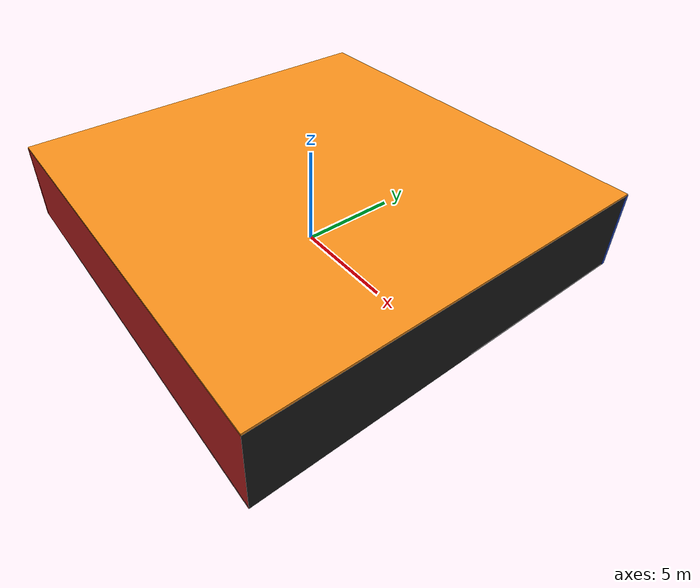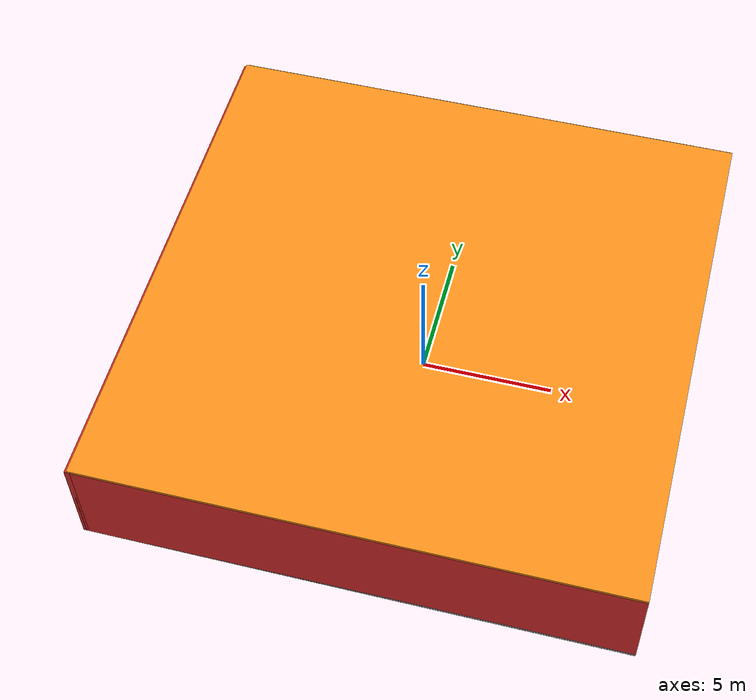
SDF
<sdf version="1.4">
 <world name="default">
  <physics type="ode">
   <max_step_size>0.001</max_step_size>
   <real_time_factor>1</real_time_factor>
   <real_time_update_rate>1000</real_time_update_rate>
   <gravity>0 0 -9.8</gravity>
  </physics>
  <scene><ambient>0.4 0.4 0.4 1</ambient><background>0.7 0.7 0.7 1</background><shadows>1</shadows></scene>
  <model name="Surrounding">
   <static>1</static>
   <link name="Ceiling">
    <collision name="Ceiling_Collision"><geometry><box><size>20 20 0.1</size></box></geometry></collision>
    <visual name="Ceiling_Visual">
     <geometry><box><size>20 20 0.1</size></box></geometry>
     <material>
      <script><uri>file://media/materials/scripts/gazebo.material</uri><name>Gazebo/Orange</name></script>
     </material>
    </visual>
    <pose>0 0 4.05 0 0 0</pose>
   </link>
   <link name="Wall_South">
    <collision name="Wall_South_Collision">
     <geometry><box><size>20 0 4</size></box></geometry>
     <pose>0 0 2 0 -0 0</pose>
    </collision>
    <visual name="Wall_South_Visual">
     <pose>0 0 2 0 -0 0</pose>
     <geometry><box><size>20 0 4</size></box></geometry>
     <material>
      <script><uri>file://media/materials/scripts/gazebo.material</uri><name>Gazebo/RedBright</name></script>
     </material>
    </visual>
    <velocity_decay><linear>0</linear><angular>0</angular></velocity_decay>
    <pose>0 -10 0 0 -0 0</pose>
   </link>
   <link name="Wall_East">
    <collision name="Wall_21_Collision">
     <geometry><box><size>20 0 4</size></box></geometry>
     <pose>0 0 2 0 -0 0</pose>
    </collision>
    <visual name="Wall_21_Visual">
     <pose>0 0 2 0 -0 0</pose>
     <geometry><box><size>20 0 4</size></box></geometry>
     <material>
      <script><uri>file://media/materials/scripts/gazebo.material</uri><name>Gazebo/Black</name></script>
     </material>
    </visual>
    <velocity_decay><linear>0</linear><angular>0</angular></velocity_decay>
    <pose>10 0 0 0 -0 1.5708</pose>
   </link>
   <link name="Wall_North">
    <collision name="Wall_22_Collision">
     <geometry><box><size>20 0.2 4</size></box></geometry>
     <pose>0 0 2 0 -0 0</pose>
    </collision>
    <visual name="Wall_22_Visual">
     <pose>0 0 2 0 -0 0</pose>
     <geometry><box><size>20 0.2 4</size></box></geometry>
     <material>
      <script><uri>file://media/materials/scripts/gazebo.material</uri><name>Gazebo/BlueGlow</name></script>
     </material>
    </visual>
    <velocity_decay><linear>0</linear><angular>0</angular></velocity_decay>
    <pose>0 10 0 0 -0 0</pose>
   </link>
   <link name="Wall_West">
    <collision name="Wall_23_Collision">
     <geometry><box><size>20 0.2 4</size></box></geometry>
     <pose>0 0 2 0 -0 0</pose>
    </collision>
    <visual name="Wall_23_Visual">
     <pose>0 0 2 0 -0 0</pose>
     <geometry><box><size>20 0.2 4</size></box></geometry>
     <material>
      <script><uri>file://media/materials/scripts/gazebo.material</uri><name>Gazebo/RedGlow</name></script>
     </material>
    </visual>
    <velocity_decay><linear>0</linear><angular>0</angular></velocity_decay>
    <pose>-10 0 0 0 0 -1.5708</pose>
   </link>
   <link name="Ground_link">
    <collision name="collision">
     <pose>0 0 .05 0 -0 0</pose>
     <geometry><box><size>20 20 0.1</size></box></geometry>
    </collision>
    <visual name="visual">
     <pose>0 0 .05 0 -0 0</pose>
     <geometry><box><size>20 20 0.1</size></box></geometry>
     <material>
      <script><uri>file://media/materials/scripts/gazebo.material</uri><name>Gazebo/Grey</name></script>
     </material>
    </visual>
   </link>
   <static>1</static>
  </model>
  <spherical_coordinates>
   <surface_model>EARTH_WGS84</surface_model>
   <latitude_deg>0</latitude_deg>
   <longitude_deg>0</longitude_deg>
   <elevation>0</elevation>
   <heading_deg>0</heading_deg>
  </spherical_coordinates>
  <light name="lightball_0" type="diffuse">
   <diffuse>0.8 0.8 0.8 1</diffuse>
   <specular>0.2 0.2 0.2 1</specular>
   <attenuation>
    <range>100</range>
    <constant>0.7</constant>
    <linear>0.01</linear>
    <quadratic>0.001</quadratic>
   </attenuation>
   <direction>-0.5 0.1 -0.9</direction>
   <pose>4.19653005971 9.36515528289 2.83528018904 0 0 0</pose>
  </light>
  <light name="lightball_1" type="diffuse">
   <diffuse>0.8 0.8 0.8 1</diffuse>
   <specular>0.2 0.2 0.2 1</specular>
   <attenuation>
    <range>100</range>
    <constant>0.7</constant>
    <linear>0.01</linear>
    <quadratic>0.001</quadratic>
   </attenuation>
   <direction>-0.5 0.1 -0.9</direction>
   <pose>6.63555135831 -6.49196283672 3.39907223334 0 0 0</pose>
  </light>
  <light name="lightball_2" type="diffuse">
   <diffuse>0.8 0.8 0.8 1</diffuse>
   <specular>0.2 0.2 0.2 1</specular>
   <attenuation>
    <range>100</range>
    <constant>0.7</constant>
    <linear>0.01</linear>
    <quadratic>0.001</quadratic>
   </attenuation>
   <direction>-0.5 0.1 -0.9</direction>
   <pose>5.84226384154 8.5335457453 1.96128282562 0 0 0</pose>
  </light>
  <light name="lightball_3" type="diffuse">
   <diffuse>0.8 0.8 0.8 1</diffuse>
   <specular>0.2 0.2 0.2 1</specular>
   <attenuation>
    <range>100</range>
    <constant>0.7</constant>
    <linear>0.01</linear>
    <quadratic>0.001</quadratic>
   </attenuation>
   <direction>-0.5 0.1 -0.9</direction>
   <pose>0.339624848654 2.66784922974 2.33979271171 0 0 0</pose>
  </light>
  <light name="lightball_4" type="diffuse">
   <diffuse>0.8 0.8 0.8 1</diffuse>
   <specular>0.2 0.2 0.2 1</specular>
   <attenuation>
    <range>100</range>
    <constant>0.7</constant>
    <linear>0.01</linear>
    <quadratic>0.001</quadratic>
   </attenuation>
   <direction>-0.5 0.1 -0.9</direction>
   <pose>-7.18342024666 -7.2674730788 3.61900630175 0 0 0</pose>
  </light>
  <light name="lightball_5" type="diffuse">
   <diffuse>0.8 0.8 0.8 1</diffuse>
   <specular>0.2 0.2 0.2 1</specular>
   <attenuation>
    <range>100</range>
    <constant>0.7</constant>
    <linear>0.01</linear>
    <quadratic>0.001</quadratic>
   </attenuation>
   <direction>-0.5 0.1 -0.9</direction>
   <pose>-2.56555055647 1.59205999399 2.57981992669 0 0 0</pose>
  </light>
  <light name="lightball_6" type="diffuse">
   <diffuse>0.8 0.8 0.8 1</diffuse>
   <specular>0.2 0.2 0.2 1</specular>
   <attenuation>
    <range>100</range>
    <constant>0.7</constant>
    <linear>0.01</linear>
    <quadratic>0.001</quadratic>
   </attenuation>
   <direction>-0.5 0.1 -0.9</direction>
   <pose>-8.18173205235 -5.59811247263 2.96816159636 0 0 0</pose>
  </light>
  <light name="lightball_7" type="diffuse">
   <diffuse>0.8 0.8 0.8 1</diffuse>
   <specular>0.2 0.2 0.2 1</specular>
   <attenuation>
    <range>100</range>
    <constant>0.7</constant>
    <linear>0.01</linear>
    <quadratic>0.001</quadratic>
   </attenuation>
   <direction>-0.5 0.1 -0.9</direction>
   <pose>-5.43163385012 0.800420540141 2.25779166132 0 0 0</pose>
  </light>
  <include><uri>model://cabinet</uri><pose>-7.44100627985 -4.83735127314 0 0 0 1.75427777328</pose></include>
  <include>
   <uri>model://construction_cone</uri>
   <pose>-7.248690669 1.5206046695 0 0 0 1.57147165709</pose>
  </include>
  <include>
   <uri>model://robocup_3Dsim_goal</uri>
   <pose>-1.32124424983 0.779501892444 0 0 0 1.23121612374</pose>
  </include>
  <include><uri>model://cabinet</uri><pose>-1.84403973143 5.2756346238 0 0 0 1.54499695714</pose></include>
  <include>
   <uri>model://construction_cone</uri>
   <pose>1.21434879575 -7.76432670378 0 0 0 1.52770518232</pose>
  </include>
  <include>
   <uri>model://textured_shapes</uri>
   <pose>1.74129640897 1.82774970693 0 0 0 0.27895647136</pose>
  </include>
  <include>
   <uri>model://construction_cone</uri>
   <pose>2.27600629027 7.69196971851 0 0 0 2.05212402111</pose>
  </include>
  <include>
   <uri>model://construction_cone</uri>
   <pose>4.20201626116 -4.69073326829 0 0 0 1.49282113786</pose>
  </include>
  <include>
   <uri>model://robocup_3Dsim_goal</uri>
   <pose>7.16066915782 -7.98298708475 0 0 0 0.761481236194</pose>
  </include>
  <include>
   <uri>model://textured_shapes</uri>
   <pose>6.84039302676 -1.1416344624 0 0 0 0.0338105554997</pose>
  </include>
  <include><uri>model://cabinet</uri><pose>6.84249625501 5.20802998862 0 0 0 2.63853431467</pose></include>
 </world>
</sdf>

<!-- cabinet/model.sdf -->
<sdf version="1.5">
  <model name="cabinet">
    <static>true</static>
    <link name="cabinet_bottom_plate">
      <inertial>
        <pose>0 0 -1 0 0 0</pose>
        <inertia>
          <ixx>2.050000</ixx>
          <ixy>0</ixy>
          <ixz>0</ixz>
          <iyy>2.050000</iyy>
          <iyz>0</iyz>
          <izz>2.050000</izz>
        </inertia>
        <mass>25.000000</mass>
      </inertial>
      <collision name="cabinet_bottom_plate_geom">
        <pose>0 0 0.010000 0 0 0</pose>
        <geometry>
          <box>
            <size>0.450000 0.450000 0.020000</size>
          </box>
        </geometry>
      </collision>
      <visual name="cabinet_bottom_plate_geom_visual">
        <pose>0 0 0.010000 0 0 0</pose>
        <geometry>
          <box>
            <size>0.450000 0.450000 0.020000</size>
          </box>
        </geometry>
        <material>
          <script>
            <uri>model://media/materials/scripts/gazebo.material</uri>
            <name>Gazebo/Wood</name>
          </script>
        </material>
      </visual>
      <collision name="cabinet_bottom_plate_geom_cabinet_back_plate">
        <pose>0.235000 0 0.510000 0 0 0</pose>
        <geometry>
          <box>
            <size>0.020000 0.450000 1.020000</size>
          </box>
        </geometry>
      </collision>
      <visual name="cabinet_bottom_plate_geom_cabinet_back_plate_visual">
        <pose>0.235000 0 0.510000 0 0 0</pose>
        <geometry>
          <box>
            <size>0.020000 0.450000 1.020000</size>
          </box>
        </geometry>
        <material>
          <script>
            <uri>model://media/materials/scripts/gazebo.material</uri>
            <name>Gazebo/Wood</name>
          </script>
        </material>
      </visual>
      <collision name="cabinet_bottom_plate_geom_cabinet_left_plate">
        <pose>0 0.235000 0.510000 0 0 0</pose>
        <geometry>
          <box>
            <size>0.450000 0.020000 1.020000</size>
          </box>
        </geometry>
      </collision>
      <visual name="cabinet_bottom_plate_geom_cabinet_left_plate_visual">
        <pose>0 0.235000 0.510000 0 0 0</pose>
        <geometry>
          <box>
            <size>0.450000 0.020000 1.020000</size>
          </box>
        </geometry>
        <material>
          <script>
            <uri>model://media/materials/scripts/gazebo.material</uri>
            <name>Gazebo/Wood</name>
          </script>
        </material>
      </visual>
      <collision name="cabinet_bottom_plate_geom_cabinet_middle_plate">
        <pose>0 0 0.510000 0 0 0</pose>
        <geometry>
          <box>
            <size>0.450000 0.450000 0.020000</size>
          </box>
        </geometry>
      </collision>
      <visual name="cabinet_bottom_plate_geom_cabinet_middle_plate_visual">
        <pose>0 0 0.510000 0 0 0</pose>
        <geometry>
          <box>
            <size>0.450000 0.450000 0.020000</size>
          </box>
        </geometry>
        <material>
          <script>
            <uri>model://media/materials/scripts/gazebo.material</uri>
            <name>Gazebo/Wood</name>
          </script>
        </material>
      </visual>
      <collision name="cabinet_bottom_plate_geom_cabinet_right_plate">
        <pose>0 -0.235000 0.510000 0 0 0</pose>
        <geometry>
          <box>
            <size>0.450000 0.020000 1.020000</size>
          </box>
        </geometry>
      </collision>
      <visual name="cabinet_bottom_plate_geom_cabinet_right_plate_visual">
        <pose>0 -0.235000 0.510000 0 0 0</pose>
        <geometry>
          <box>
            <size>0.450000 0.020000 1.020000</size>
          </box>
        </geometry>
        <material>
          <script>
            <uri>model://media/materials/scripts/gazebo.material</uri>
            <name>Gazebo/Wood</name>
          </script>
        </material>
      </visual>
      <collision name="cabinet_bottom_plate_geom_cabinet_top_plate">
        <pose>0 0 1.010000 0 0 0</pose>
        <geometry>
          <box>
            <size>0.450000 0.450000 0.020000</size>
          </box>
        </geometry>
      </collision>
      <visual name="cabinet_bottom_plate_geom_cabinet_top_plate_visual">
        <pose>0 0 1.010000 0 0 0</pose>
        <geometry>
          <box>
            <size>0.450000 0.450000 0.020000</size>
          </box>
        </geometry>
        <material>
          <script>
            <uri>model://media/materials/scripts/gazebo.material</uri>
            <name>Gazebo/Wood</name>
          </script>
        </material>
      </visual>
    </link>
  </model>
</sdf>

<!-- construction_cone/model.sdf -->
<sdf version="1.5">
  <model name="Construction Cone">
    <link name="link">
      <collision name="collision">
        <geometry>
          <mesh>
            <scale>10 10 10</scale>
            <uri>file://isr-testbed/construction_cone/meshes/construction_cone.dae</uri>
          </mesh>
        </geometry>
      </collision>
      <visual name="visual">
        <geometry>
          <mesh>
            <scale>10 10 10</scale>
            <uri>file://isr-testbed/construction_cone/meshes/construction_cone.dae</uri>
          </mesh>
        </geometry>
      </visual>
    </link>
  </model>
</sdf>

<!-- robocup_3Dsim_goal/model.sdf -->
<sdf version="1.5">
  <model name="robocup_3d_goal">
    <static>true</static>
    <link name="left_post">
      <pose>0 1.05 0.45 0 0 0</pose>
      <collision name="collision">
        <geometry>
          <cylinder>
            <radius>0.05</radius>
            <length>0.9</length>
          </cylinder>
        </geometry>
      </collision>
      <visual name="visual">
        <geometry>
          <cylinder>
            <radius>0.05</radius>
            <length>0.9</length>
          </cylinder>
        </geometry>
        <material>
          <script>
            <uri>file://media/materials/scripts/gazebo.material</uri>
            <name>Gazebo/ZincYellow</name>
          </script>
        </material>
      </visual>
    </link>
    <link name="left_support_horiz_lower">
      <pose>0.30 1.05 0.01 0 0 0</pose>
      <collision name="collision">
        <geometry>
          <box>
            <size>0.50 0.02 0.02</size>
          </box>
        </geometry>
      </collision>
      <visual name="visual">
        <geometry>
          <box>
            <size>0.50 0.02 0.02</size>
          </box>
        </geometry>
        <material>
          <script>
            <uri>file://media/materials/scripts/gazebo.material</uri>
            <name>Gazebo/White</name>
          </script>
        </material>
      </visual>
    </link>
    <link name="left_support_horiz_upper">
      <pose>0.30 1.05 0.79 0 0 0</pose>
      <collision name="collision">
        <geometry>
          <box>
            <size>0.50 0.02 0.02</size>
          </box>
        </geometry>
      </collision>
      <visual name="visual">
        <geometry>
          <box>
            <size>0.50 0.02 0.02</size>
          </box>
        </geometry>
        <material>
          <script>
            <uri>file://media/materials/scripts/gazebo.material</uri>
            <name>Gazebo/White</name>
          </script>
        </material>
      </visual>
    </link>
    <link name="left_support_vertical">
      <pose>0.56 1.05 0.4 0 1.5708 0</pose>
      <collision name="collision">
        <geometry>
          <box>
            <size>0.80 0.02 0.02</size>
          </box>
        </geometry>
      </collision>
      <visual name="visual">
        <geometry>
          <box>
            <size>0.80 0.02 0.02</size>
          </box>
        </geometry>
        <material>
          <script>
            <uri>file://media/materials/scripts/gazebo.material</uri>
            <name>Gazebo/White</name>
          </script>
        </material>
      </visual>
    </link>
    <link name="right_support_horiz_lower">
      <pose>0.30 -1.05 0.01 0 0 0</pose>
      <collision name="collision">
        <geometry>
          <box>
            <size>0.50 0.02 0.02</size>
          </box>
        </geometry>
      </collision>
      <visual name="visual">
        <geometry>
          <box>
            <size>0.50 0.02 0.02</size>
          </box>
        </geometry>
        <material>
          <script>
            <uri>file://media/materials/scripts/gazebo.material</uri>
            <name>Gazebo/White</name>
          </script>
        </material>
      </visual>
    </link>
    <link name="right_support_horiz_upper">
      <pose>0.30 -1.05 0.79 0 0 0</pose>
      <collision name="collision">
        <geometry>
          <box>
            <size>0.50 0.02 0.02</size>
          </box>
        </geometry>
      </collision>
      <visual name="visual">
        <geometry>
          <box>
            <size>0.50 0.02 0.02</size>
          </box>
        </geometry>
        <material>
          <script>
            <uri>file://media/materials/scripts/gazebo.material</uri>
            <name>Gazebo/White</name>
          </script>
        </material>
      </visual>
    </link>
    <link name="right_support_vertical">
      <pose>0.56 -1.05 0.4 0 1.5708 0</pose>
      <collision name="collision">
        <geometry>
          <box>
            <size>0.80 0.02 0.02</size>
          </box>
        </geometry>
      </collision>
      <visual name="visual">
        <geometry>
          <box>
            <size>0.80 0.02 0.02</size>
          </box>
        </geometry>
        <material>
          <script>
            <uri>file://media/materials/scripts/gazebo.material</uri>
            <name>Gazebo/White</name>
          </script>
        </material>
      </visual>
    </link>
    <link name="center_support_horiz_lower">
      <pose>0.56 0 0.01 0 1.5708 0</pose>
      <collision name="collision">
        <geometry>
          <box>
            <size>0.02 2.08 0.02</size>
          </box>
        </geometry>
      </collision>
      <visual name="visual">
        <geometry>
          <box>
            <size>0.02 2.08 0.02</size>
          </box>
        </geometry>
        <material>
          <script>
            <uri>file://media/materials/scripts/gazebo.material</uri>
            <name>Gazebo/White</name>
          </script>
        </material>
      </visual>
    </link>
    <link name="center_support_horiz_upper">
      <pose>0.56 0 0.79 0 1.5708 0</pose>
      <collision name="collision">
        <geometry>
          <box>
            <size>0.02 2.08 0.02</size>
          </box>
        </geometry>
      </collision>
      <visual name="visual">
        <geometry>
          <box>
            <size>0.02 2.08 0.02</size>
          </box>
        </geometry>
        <material>
          <script>
            <uri>file://media/materials/scripts/gazebo.material</uri>
            <name>Gazebo/White</name>
          </script>
        </material>
      </visual>
    </link>
    <link name="right_post">
      <pose>0 -1.05 0.45 0 0 0</pose>
      <collision name="collision">
        <geometry>
          <cylinder>
            <radius>0.05</radius>
            <length>0.9</length>
          </cylinder>
        </geometry>
      </collision>
      <visual name="visual">
        <geometry>
          <cylinder>
            <radius>0.05</radius>
            <length>0.9</length>
          </cylinder>
        </geometry>
        <material>
          <script>
            <uri>file://media/materials/scripts/gazebo.material</uri>
            <name>Gazebo/ZincYellow</name>
          </script>
        </material>
      </visual>
    </link>
    <link name="crossbar">
      <pose>0 0 0.85 1.57 1.57 0</pose>
      <collision name="collision">
        <geometry>
          <cylinder>
            <radius>0.05</radius>
            <length>2.0</length>
          </cylinder>
        </geometry>
      </collision>
      <visual name="visual">
        <geometry>
          <cylinder>
            <radius>0.05</radius>
            <length>2.0</length>
          </cylinder>
        </geometry>
        <material>
          <script>
            <uri>file://media/materials/scripts/gazebo.material</uri>
            <name>Gazebo/ZincYellow</name>
          </script>
        </material>
      </visual>
    </link>
    <link name="center_net">
      <pose>0.56 0 0.40 0 0 0</pose>
      <collision name="collision">
        <geometry>
          <box>
            <size>0.01 2.1 0.80</size>
          </box>
        </geometry>
      </collision>
      <visual name="visual">
        <geometry>
          <box>
            <size>0.01 2.1 0.80</size>
          </box>
        </geometry>
        <material>
          <script>
            <uri>model://../model_source/models/robocup09_spl_field/materials/scripts/</uri>
            <uri>model://../model_source/models/robocup09_spl_field/materials/textures/</uri>
            <name>RoboCup/Net</name>
          </script>
        </material>
      </visual>
    </link>
    <link name="left_net">
      <pose>0.30 1.05 0.40 0 0 0</pose>
      <collision name="collision">
        <geometry>
          <box>
            <size>0.50 0.01 0.76</size>
          </box>
        </geometry>
      </collision>
      <visual name="visual">
        <geometry>
          <box>
            <size>0.50 0.01 0.76</size>
          </box>
        </geometry>
        <material>
          <script>
            <uri>model://../model_source/models/robocup09_spl_field/materials/scripts/</uri>
            <uri>model://../model_source/models/robocup09_spl_field/materials/textures/</uri>
            <name>RoboCup/Net</name>
          </script>
        </material>
      </visual>
    </link>
    <link name="right_net">
      <pose>0.30 -1.05 0.40 0 0 0</pose>
      <collision name="collision">
        <geometry>
          <box>
            <size>0.50 0.01 0.76</size>
          </box>
        </geometry>
      </collision>
      <visual name="visual">
        <geometry>
          <box>
            <size>0.50 0.01 0.76</size>
          </box>
        </geometry>
        <material>
          <script>
            <uri>model://../model_source/models/robocup09_spl_field/materials/scripts/</uri>
            <uri>model://../model_source/models/robocup09_spl_field/materials/textures/</uri>
            <name>RoboCup/Net</name>
          </script>
        </material>
      </visual>
    </link>
  </model>
</sdf>

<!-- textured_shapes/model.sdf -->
<sdf version="1.6">
  <model name="textured_shapes">
    <pose>0 0 0.5 0 0 0</pose>
    <link name="box">
      <pose>0 -1.5 0 0 0 0</pose>
      <collision name="collision">
        <geometry>
          <box>
            <size>1 1 1</size>
          </box>
        </geometry>
      </collision>
      <visual name="visual">
        <geometry>
          <box>
            <size>1 1 1</size>
          </box>
        </geometry>
        <material>
          <script>
            <uri>model://../model_source/models/textured_shapes/materials/scripts</uri>
            <uri>model://../model_source/models/textured_shapes/materials/textures</uri>
            <name>TexturedShape/Squares</name>
          </script>
        </material>
      </visual>
    </link>
    <link name="sphere">
      <collision name="collision">
        <geometry>
          <sphere>
            <radius>0.5</radius>
          </sphere>
        </geometry>
      </collision>
      <visual name="visual">
        <geometry>
          <sphere>
            <radius>0.5</radius>
          </sphere>
        </geometry>
        <material>
          <script>
            <uri>model://../model_source/models/textured_shapes/materials/scripts</uri>
            <uri>model://../model_source/models/textured_shapes/materials/textures</uri>
            <name>TexturedShape/Squares</name>
          </script>
        </material>
      </visual>
    </link>
    <link name="cylinder">
      <pose>0 1.5 0 0 0 0</pose>
      <collision name="collision">
        <geometry>
          <cylinder>
            <radius>0.5</radius>
            <length>1</length>
          </cylinder>
        </geometry>
      </collision>
      <visual name="visual">
        <geometry>
          <cylinder>
            <radius>0.5</radius>
            <length>1</length>
          </cylinder>
        </geometry>
        <material>
          <script>
            <uri>model://../model_source/models/textured_shapes/materials/scripts</uri>
            <uri>model://../model_source/models/textured_shapes/materials/textures</uri>
            <name>TexturedShape/Squares</name>
          </script>
        </material>
      </visual>
    </link>
  </model>
</sdf>
